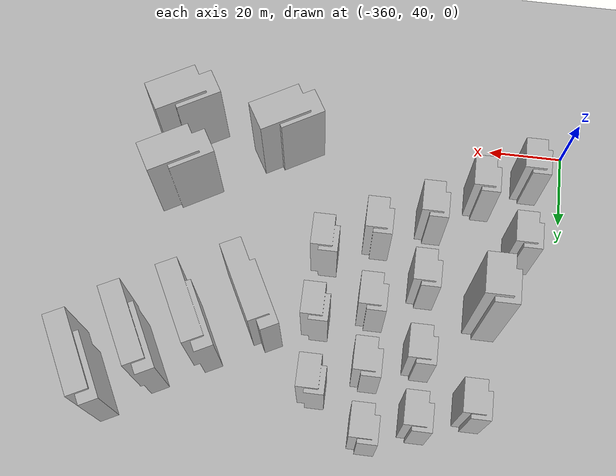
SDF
<sdf version="1.7">
 <world name="default">
  <model name="ground_plane">
   <static>1</static>
   <link name="link">
    <collision name="collision">
     <geometry><mesh><uri>model://ground_plane/scripts/plane.dae</uri><normal>0 0 1</normal></mesh></geometry>
     <surface><friction><ode><mu>100</mu><mu2>50</mu2></ode></friction></surface>
    </collision>
    <visual name="visual">
     <geometry><mesh><uri>model://ground_plane/scripts/plane.dae</uri><normal>0 0 1</normal></mesh></geometry>
     <material>
      <lighting>1</lighting>
      <script><uri>model://ground_plane/scripts/plane.jpg</uri><name>__default__</name></script>
      <shader type="pixel"/>
     </material>
    </visual>
   </link>
  </model>
  <model name="apartment2_1_clone_0">
   <static>1</static>
   <link name="link_0">
    <inertial>
     <mass>1</mass>
     <inertia>
      <ixx>0.166667</ixx>
      <ixy>0</ixy>
      <ixz>0</ixz>
      <iyy>0.166667</iyy>
      <iyz>0</iyz>
      <izz>0.166667</izz>
     </inertia>
    </inertial>
    <pose>1e-06 -0 0 0 -0 0</pose>
    <visual name="visual">
     <geometry>
      <mesh><uri>model://apartment1/scripts/apartment1.dae</uri><scale>0.35 0.14 0.22</scale></mesh>
     </geometry>
     <material>
      <lighting>1</lighting>
      <script><uri>model://apartment1/scripts/apartment1.jpg</uri><name>__default__</name></script>
      <shader type="pixel"/>
     </material>
    </visual>
    <collision name="collision">
     <geometry>
      <mesh><uri>model://apartment1/scripts/apartment1.dae</uri><scale>0.35 0.14 0.22</scale></mesh>
     </geometry>
     <surface>
      <friction>
       <ode><mu>1</mu><mu2>1</mu2><fdir1>0 0 0</fdir1><slip1>0</slip1><slip2>0</slip2></ode>
       <torsional>
        <coefficient>1</coefficient>
        <patch_radius>0</patch_radius>
        <surface_radius>0</surface_radius>
        <use_patch_radius>1</use_patch_radius>
        <ode><slip>0</slip></ode>
       </torsional>
      </friction>
      <bounce><restitution_coefficient>0</restitution_coefficient><threshold>1e+06</threshold></bounce>
      <contact>
       <collide_without_contact>0</collide_without_contact>
       <collide_without_contact_bitmask>1</collide_without_contact_bitmask>
       <collide_bitmask>1</collide_bitmask>
       <ode>
        <soft_cfm>0</soft_cfm>
        <soft_erp>0.2</soft_erp>
        <kp>1e+13</kp>
        <kd>1</kd>
        <max_vel>0.01</max_vel>
        <min_depth>0</min_depth>
       </ode>
       <bullet>
        <split_impulse>1</split_impulse>
        <split_impulse_penetration_threshold>-0.01</split_impulse_penetration_threshold>
        <soft_cfm>0</soft_cfm>
        <soft_erp>0.2</soft_erp>
        <kp>1e+13</kp>
        <kd>1</kd>
       </bullet>
      </contact>
     </surface>
    </collision>
   </link>
   <static>0</static>
   <pose>-281.654 47.0223 0 0 -0 0.527898</pose>
  </model>
  <model name="apartment2_1_clone_2">
   <static>1</static>
   <link name="link_0">
    <inertial>
     <mass>1</mass>
     <inertia>
      <ixx>0.166667</ixx>
      <ixy>0</ixy>
      <ixz>0</ixz>
      <iyy>0.166667</iyy>
      <iyz>0</iyz>
      <izz>0.166667</izz>
     </inertia>
    </inertial>
    <pose>1e-06 -0 0 0 -0 0</pose>
    <visual name="visual">
     <geometry>
      <mesh><uri>model://apartment1/scripts/apartment1.dae</uri><scale>0.35 0.14 0.22</scale></mesh>
     </geometry>
     <material>
      <lighting>1</lighting>
      <script><uri>model://apartment1/scripts/apartment1.jpg</uri><name>__default__</name></script>
      <shader type="pixel"/>
     </material>
    </visual>
    <collision name="collision">
     <geometry>
      <mesh><uri>model://apartment1/scripts/apartment1.dae</uri><scale>0.35 0.14 0.22</scale></mesh>
     </geometry>
     <surface>
      <friction>
       <ode><mu>1</mu><mu2>1</mu2><fdir1>0 0 0</fdir1><slip1>0</slip1><slip2>0</slip2></ode>
       <torsional>
        <coefficient>1</coefficient>
        <patch_radius>0</patch_radius>
        <surface_radius>0</surface_radius>
        <use_patch_radius>1</use_patch_radius>
        <ode><slip>0</slip></ode>
       </torsional>
      </friction>
      <bounce><restitution_coefficient>0</restitution_coefficient><threshold>1e+06</threshold></bounce>
      <contact>
       <collide_without_contact>0</collide_without_contact>
       <collide_without_contact_bitmask>1</collide_without_contact_bitmask>
       <collide_bitmask>1</collide_bitmask>
       <ode>
        <soft_cfm>0</soft_cfm>
        <soft_erp>0.2</soft_erp>
        <kp>1e+13</kp>
        <kd>1</kd>
        <max_vel>0.01</max_vel>
        <min_depth>0</min_depth>
       </ode>
       <bullet>
        <split_impulse>1</split_impulse>
        <split_impulse_penetration_threshold>-0.01</split_impulse_penetration_threshold>
        <soft_cfm>0</soft_cfm>
        <soft_erp>0.2</soft_erp>
        <kp>1e+13</kp>
        <kd>1</kd>
       </bullet>
      </contact>
     </surface>
    </collision>
   </link>
   <static>0</static>
   <pose>-253.968 44.6072 0 0 -0 0.527898</pose>
  </model>
  <model name="apartment2_1_clone_3">
   <static>1</static>
   <link name="link_0">
    <inertial>
     <mass>1</mass>
     <inertia>
      <ixx>0.166667</ixx>
      <ixy>0</ixy>
      <ixz>0</ixz>
      <iyy>0.166667</iyy>
      <iyz>0</iyz>
      <izz>0.166667</izz>
     </inertia>
    </inertial>
    <pose>1e-06 -0 0 0 -0 0</pose>
    <visual name="visual">
     <geometry>
      <mesh><uri>model://apartment1/scripts/apartment1.dae</uri><scale>0.35 0.14 0.22</scale></mesh>
     </geometry>
     <material>
      <lighting>1</lighting>
      <script><uri>model://apartment1/scripts/apartment1.jpg</uri><name>__default__</name></script>
      <shader type="pixel"/>
     </material>
    </visual>
    <collision name="collision">
     <geometry>
      <mesh><uri>model://apartment1/scripts/apartment1.dae</uri><scale>0.35 0.14 0.22</scale></mesh>
     </geometry>
     <surface>
      <friction>
       <ode><mu>1</mu><mu2>1</mu2><fdir1>0 0 0</fdir1><slip1>0</slip1><slip2>0</slip2></ode>
       <torsional>
        <coefficient>1</coefficient>
        <patch_radius>0</patch_radius>
        <surface_radius>0</surface_radius>
        <use_patch_radius>1</use_patch_radius>
        <ode><slip>0</slip></ode>
       </torsional>
      </friction>
      <bounce><restitution_coefficient>0</restitution_coefficient><threshold>1e+06</threshold></bounce>
      <contact>
       <collide_without_contact>0</collide_without_contact>
       <collide_without_contact_bitmask>1</collide_without_contact_bitmask>
       <collide_bitmask>1</collide_bitmask>
       <ode>
        <soft_cfm>0</soft_cfm>
        <soft_erp>0.2</soft_erp>
        <kp>1e+13</kp>
        <kd>1</kd>
        <max_vel>0.01</max_vel>
        <min_depth>0</min_depth>
       </ode>
       <bullet>
        <split_impulse>1</split_impulse>
        <split_impulse_penetration_threshold>-0.01</split_impulse_penetration_threshold>
        <soft_cfm>0</soft_cfm>
        <soft_erp>0.2</soft_erp>
        <kp>1e+13</kp>
        <kd>1</kd>
       </bullet>
      </contact>
     </surface>
    </collision>
   </link>
   <static>0</static>
   <pose>-255.029 61.8446 0 0 -0 0.527898</pose>
  </model>
  <model name="apartment1_0_clone_32">
   <static>1</static>
   <link name="link_0">
    <inertial>
     <mass>1</mass>
     <inertia>
      <ixx>0.166667</ixx>
      <ixy>0</ixy>
      <ixz>0</ixz>
      <iyy>0.166667</iyy>
      <iyz>0</iyz>
      <izz>0.166667</izz>
     </inertia>
    </inertial>
    <pose>1e-06 -0 0 0 -0 0</pose>
    <visual name="visual">
     <geometry>
      <mesh><uri>model://apartment1/scripts/apartment1.dae</uri><scale>0.14 0.14 0.175</scale></mesh>
     </geometry>
     <material>
      <lighting>1</lighting>
      <script><uri>model://apartment1/scripts/apartment1.jpg</uri><name>__default__</name></script>
      <shader type="pixel"/>
     </material>
    </visual>
    <collision name="collision">
     <geometry>
      <mesh><uri>model://apartment1/scripts/apartment1.dae</uri><scale>0.14 0.14 0.175</scale></mesh>
     </geometry>
     <surface>
      <friction>
       <ode><mu>1</mu><mu2>1</mu2><fdir1>0 0 0</fdir1><slip1>0</slip1><slip2>0</slip2></ode>
       <torsional>
        <coefficient>1</coefficient>
        <patch_radius>0</patch_radius>
        <surface_radius>0</surface_radius>
        <use_patch_radius>1</use_patch_radius>
        <ode><slip>0</slip></ode>
       </torsional>
      </friction>
      <bounce><restitution_coefficient>0</restitution_coefficient><threshold>1e+06</threshold></bounce>
      <contact>
       <collide_without_contact>0</collide_without_contact>
       <collide_without_contact_bitmask>1</collide_without_contact_bitmask>
       <collide_bitmask>1</collide_bitmask>
       <ode>
        <soft_cfm>0</soft_cfm>
        <soft_erp>0.2</soft_erp>
        <kp>1e+13</kp>
        <kd>1</kd>
        <max_vel>0.01</max_vel>
        <min_depth>0</min_depth>
       </ode>
       <bullet>
        <split_impulse>1</split_impulse>
        <split_impulse_penetration_threshold>-0.01</split_impulse_penetration_threshold>
        <soft_cfm>0</soft_cfm>
        <soft_erp>0.2</soft_erp>
        <kp>1e+13</kp>
        <kd>1</kd>
       </bullet>
      </contact>
     </surface>
    </collision>
   </link>
   <static>0</static>
   <pose>-296.546 77.1253 0 0 -0 0</pose>
  </model>
  <model name="apartment1_0_clone_33">
   <static>1</static>
   <link name="link_0">
    <inertial>
     <mass>1</mass>
     <inertia>
      <ixx>0.166667</ixx>
      <ixy>0</ixy>
      <ixz>0</ixz>
      <iyy>0.166667</iyy>
      <iyz>0</iyz>
      <izz>0.166667</izz>
     </inertia>
    </inertial>
    <pose>1e-06 -0 0 0 -0 0</pose>
    <visual name="visual">
     <geometry>
      <mesh><uri>model://apartment1/scripts/apartment1.dae</uri><scale>0.14 0.14 0.175</scale></mesh>
     </geometry>
     <material>
      <lighting>1</lighting>
      <script><uri>model://apartment1/scripts/apartment1.jpg</uri><name>__default__</name></script>
      <shader type="pixel"/>
     </material>
    </visual>
    <collision name="collision">
     <geometry>
      <mesh><uri>model://apartment1/scripts/apartment1.dae</uri><scale>0.14 0.14 0.175</scale></mesh>
     </geometry>
     <surface>
      <friction>
       <ode><mu>1</mu><mu2>1</mu2><fdir1>0 0 0</fdir1><slip1>0</slip1><slip2>0</slip2></ode>
       <torsional>
        <coefficient>1</coefficient>
        <patch_radius>0</patch_radius>
        <surface_radius>0</surface_radius>
        <use_patch_radius>1</use_patch_radius>
        <ode><slip>0</slip></ode>
       </torsional>
      </friction>
      <bounce><restitution_coefficient>0</restitution_coefficient><threshold>1e+06</threshold></bounce>
      <contact>
       <collide_without_contact>0</collide_without_contact>
       <collide_without_contact_bitmask>1</collide_without_contact_bitmask>
       <collide_bitmask>1</collide_bitmask>
       <ode>
        <soft_cfm>0</soft_cfm>
        <soft_erp>0.2</soft_erp>
        <kp>1e+13</kp>
        <kd>1</kd>
        <max_vel>0.01</max_vel>
        <min_depth>0</min_depth>
       </ode>
       <bullet>
        <split_impulse>1</split_impulse>
        <split_impulse_penetration_threshold>-0.01</split_impulse_penetration_threshold>
        <soft_cfm>0</soft_cfm>
        <soft_erp>0.2</soft_erp>
        <kp>1e+13</kp>
        <kd>1</kd>
       </bullet>
      </contact>
     </surface>
    </collision>
   </link>
   <static>0</static>
   <pose>-309.75 70.7885 0 0 -0 0</pose>
  </model>
  <model name="apartment1_0_clone_42">
   <static>1</static>
   <link name="link_0">
    <inertial>
     <mass>1</mass>
     <inertia>
      <ixx>0.166667</ixx>
      <ixy>0</ixy>
      <ixz>0</ixz>
      <iyy>0.166667</iyy>
      <iyz>0</iyz>
      <izz>0.166667</izz>
     </inertia>
    </inertial>
    <pose>1e-06 -0 0 0 -0 0</pose>
    <visual name="visual">
     <geometry>
      <mesh><uri>model://apartment1/scripts/apartment1.dae</uri><scale>0.14 0.14 0.175</scale></mesh>
     </geometry>
     <material>
      <lighting>1</lighting>
      <script><uri>model://apartment1/scripts/apartment1.jpg</uri><name>__default__</name></script>
      <shader type="pixel"/>
     </material>
    </visual>
    <collision name="collision">
     <geometry>
      <mesh><uri>model://apartment1/scripts/apartment1.dae</uri><scale>0.14 0.14 0.175</scale></mesh>
     </geometry>
     <surface>
      <friction>
       <ode><mu>1</mu><mu2>1</mu2><fdir1>0 0 0</fdir1><slip1>0</slip1><slip2>0</slip2></ode>
       <torsional>
        <coefficient>1</coefficient>
        <patch_radius>0</patch_radius>
        <surface_radius>0</surface_radius>
        <use_patch_radius>1</use_patch_radius>
        <ode><slip>0</slip></ode>
       </torsional>
      </friction>
      <bounce><restitution_coefficient>0</restitution_coefficient><threshold>1e+06</threshold></bounce>
      <contact>
       <collide_without_contact>0</collide_without_contact>
       <collide_without_contact_bitmask>1</collide_without_contact_bitmask>
       <collide_bitmask>1</collide_bitmask>
       <ode>
        <soft_cfm>0</soft_cfm>
        <soft_erp>0.2</soft_erp>
        <kp>1e+13</kp>
        <kd>1</kd>
        <max_vel>0.01</max_vel>
        <min_depth>0</min_depth>
       </ode>
       <bullet>
        <split_impulse>1</split_impulse>
        <split_impulse_penetration_threshold>-0.01</split_impulse_penetration_threshold>
        <soft_cfm>0</soft_cfm>
        <soft_erp>0.2</soft_erp>
        <kp>1e+13</kp>
        <kd>1</kd>
       </bullet>
      </contact>
     </surface>
    </collision>
   </link>
   <static>0</static>
   <pose>-323.56 64.6225 0 0 -0 0</pose>
  </model>
  <model name="apartment1_0_clone_43">
   <static>1</static>
   <link name="link_0">
    <inertial>
     <mass>1</mass>
     <inertia>
      <ixx>0.166667</ixx>
      <ixy>0</ixy>
      <ixz>0</ixz>
      <iyy>0.166667</iyy>
      <iyz>0</iyz>
      <izz>0.166667</izz>
     </inertia>
    </inertial>
    <pose>1e-06 -0 0 0 -0 0</pose>
    <visual name="visual">
     <geometry>
      <mesh><uri>model://apartment1/scripts/apartment1.dae</uri><scale>0.14 0.14 0.175</scale></mesh>
     </geometry>
     <material>
      <lighting>1</lighting>
      <script><uri>model://apartment1/scripts/apartment1.jpg</uri><name>__default__</name></script>
      <shader type="pixel"/>
     </material>
    </visual>
    <collision name="collision">
     <geometry>
      <mesh><uri>model://apartment1/scripts/apartment1.dae</uri><scale>0.14 0.14 0.175</scale></mesh>
     </geometry>
     <surface>
      <friction>
       <ode><mu>1</mu><mu2>1</mu2><fdir1>0 0 0</fdir1><slip1>0</slip1><slip2>0</slip2></ode>
       <torsional>
        <coefficient>1</coefficient>
        <patch_radius>0</patch_radius>
        <surface_radius>0</surface_radius>
        <use_patch_radius>1</use_patch_radius>
        <ode><slip>0</slip></ode>
       </torsional>
      </friction>
      <bounce><restitution_coefficient>0</restitution_coefficient><threshold>1e+06</threshold></bounce>
      <contact>
       <collide_without_contact>0</collide_without_contact>
       <collide_without_contact_bitmask>1</collide_without_contact_bitmask>
       <collide_bitmask>1</collide_bitmask>
       <ode>
        <soft_cfm>0</soft_cfm>
        <soft_erp>0.2</soft_erp>
        <kp>1e+13</kp>
        <kd>1</kd>
        <max_vel>0.01</max_vel>
        <min_depth>0</min_depth>
       </ode>
       <bullet>
        <split_impulse>1</split_impulse>
        <split_impulse_penetration_threshold>-0.01</split_impulse_penetration_threshold>
        <soft_cfm>0</soft_cfm>
        <soft_erp>0.2</soft_erp>
        <kp>1e+13</kp>
        <kd>1</kd>
       </bullet>
      </contact>
     </surface>
    </collision>
   </link>
   <static>0</static>
   <pose>-336.226 56.0159 0 0 -0 0</pose>
  </model>
  <model name="apartment1_0_clone_44">
   <static>1</static>
   <link name="link_0">
    <inertial>
     <mass>1</mass>
     <inertia>
      <ixx>0.166667</ixx>
      <ixy>0</ixy>
      <ixz>0</ixz>
      <iyy>0.166667</iyy>
      <iyz>0</iyz>
      <izz>0.166667</izz>
     </inertia>
    </inertial>
    <pose>1e-06 -0 0 0 -0 0</pose>
    <visual name="visual">
     <geometry>
      <mesh><uri>model://apartment1/scripts/apartment1.dae</uri><scale>0.14 0.14 0.175</scale></mesh>
     </geometry>
     <material>
      <lighting>1</lighting>
      <script><uri>model://apartment1/scripts/apartment1.jpg</uri><name>__default__</name></script>
      <shader type="pixel"/>
     </material>
    </visual>
    <collision name="collision">
     <geometry>
      <mesh><uri>model://apartment1/scripts/apartment1.dae</uri><scale>0.14 0.14 0.175</scale></mesh>
     </geometry>
     <surface>
      <friction>
       <ode><mu>1</mu><mu2>1</mu2><fdir1>0 0 0</fdir1><slip1>0</slip1><slip2>0</slip2></ode>
       <torsional>
        <coefficient>1</coefficient>
        <patch_radius>0</patch_radius>
        <surface_radius>0</surface_radius>
        <use_patch_radius>1</use_patch_radius>
        <ode><slip>0</slip></ode>
       </torsional>
      </friction>
      <bounce><restitution_coefficient>0</restitution_coefficient><threshold>1e+06</threshold></bounce>
      <contact>
       <collide_without_contact>0</collide_without_contact>
       <collide_without_contact_bitmask>1</collide_without_contact_bitmask>
       <collide_bitmask>1</collide_bitmask>
       <ode>
        <soft_cfm>0</soft_cfm>
        <soft_erp>0.2</soft_erp>
        <kp>1e+13</kp>
        <kd>1</kd>
        <max_vel>0.01</max_vel>
        <min_depth>0</min_depth>
       </ode>
       <bullet>
        <split_impulse>1</split_impulse>
        <split_impulse_penetration_threshold>-0.01</split_impulse_penetration_threshold>
        <soft_cfm>0</soft_cfm>
        <soft_erp>0.2</soft_erp>
        <kp>1e+13</kp>
        <kd>1</kd>
       </bullet>
      </contact>
     </surface>
    </collision>
   </link>
   <static>0</static>
   <pose>-349.048 49.5192 0 0 -0 0</pose>
  </model>
  <model name="apartment1_0_clone_1_clone_3">
   <static>1</static>
   <link name="link_0">
    <inertial>
     <mass>1</mass>
     <inertia>
      <ixx>0.166667</ixx>
      <ixy>0</ixy>
      <ixz>0</ixz>
      <iyy>0.166667</iyy>
      <iyz>0</iyz>
      <izz>0.166667</izz>
     </inertia>
    </inertial>
    <pose>1e-06 -0 0 0 -0 0</pose>
    <visual name="visual">
     <geometry>
      <mesh><uri>model://apartment1/scripts/apartment1.dae</uri><scale>0.14 0.14 0.175</scale></mesh>
     </geometry>
     <material>
      <lighting>1</lighting>
      <script><uri>model://apartment1/scripts/apartment1.jpg</uri><name>__default__</name></script>
      <shader type="pixel"/>
     </material>
    </visual>
    <collision name="collision">
     <geometry>
      <mesh><uri>model://apartment1/scripts/apartment1.dae</uri><scale>0.14 0.14 0.175</scale></mesh>
     </geometry>
     <surface>
      <friction>
       <ode><mu>1</mu><mu2>1</mu2><fdir1>0 0 0</fdir1><slip1>0</slip1><slip2>0</slip2></ode>
       <torsional>
        <coefficient>1</coefficient>
        <patch_radius>0</patch_radius>
        <surface_radius>0</surface_radius>
        <use_patch_radius>1</use_patch_radius>
        <ode><slip>0</slip></ode>
       </torsional>
      </friction>
      <bounce><restitution_coefficient>0</restitution_coefficient><threshold>1e+06</threshold></bounce>
      <contact>
       <collide_without_contact>0</collide_without_contact>
       <collide_without_contact_bitmask>1</collide_without_contact_bitmask>
       <collide_bitmask>1</collide_bitmask>
       <ode>
        <soft_cfm>0</soft_cfm>
        <soft_erp>0.2</soft_erp>
        <kp>1e+13</kp>
        <kd>1</kd>
        <max_vel>0.01</max_vel>
        <min_depth>0</min_depth>
       </ode>
       <bullet>
        <split_impulse>1</split_impulse>
        <split_impulse_penetration_threshold>-0.01</split_impulse_penetration_threshold>
        <soft_cfm>0</soft_cfm>
        <soft_erp>0.2</soft_erp>
        <kp>1e+13</kp>
        <kd>1</kd>
       </bullet>
      </contact>
     </surface>
    </collision>
   </link>
   <static>0</static>
   <pose>-347.544 70.2306 0 0 -0 0</pose>
  </model>
  <model name="apartment1_0_clone_1_clone_5">
   <static>1</static>
   <link name="link_0">
    <inertial>
     <mass>1</mass>
     <inertia>
      <ixx>0.166667</ixx>
      <ixy>0</ixy>
      <ixz>0</ixz>
      <iyy>0.166667</iyy>
      <iyz>0</iyz>
      <izz>0.166667</izz>
     </inertia>
    </inertial>
    <pose>1e-06 -0 0 0 -0 0</pose>
    <visual name="visual">
     <geometry>
      <mesh><uri>model://apartment1/scripts/apartment1.dae</uri><scale>0.14 0.14 0.175</scale></mesh>
     </geometry>
     <material>
      <lighting>1</lighting>
      <script><uri>model://apartment1/scripts/apartment1.jpg</uri><name>__default__</name></script>
      <shader type="pixel"/>
     </material>
    </visual>
    <collision name="collision">
     <geometry>
      <mesh><uri>model://apartment1/scripts/apartment1.dae</uri><scale>0.14 0.14 0.175</scale></mesh>
     </geometry>
     <surface>
      <friction>
       <ode><mu>1</mu><mu2>1</mu2><fdir1>0 0 0</fdir1><slip1>0</slip1><slip2>0</slip2></ode>
       <torsional>
        <coefficient>1</coefficient>
        <patch_radius>0</patch_radius>
        <surface_radius>0</surface_radius>
        <use_patch_radius>1</use_patch_radius>
        <ode><slip>0</slip></ode>
       </torsional>
      </friction>
      <bounce><restitution_coefficient>0</restitution_coefficient><threshold>1e+06</threshold></bounce>
      <contact>
       <collide_without_contact>0</collide_without_contact>
       <collide_without_contact_bitmask>1</collide_without_contact_bitmask>
       <collide_bitmask>1</collide_bitmask>
       <ode>
        <soft_cfm>0</soft_cfm>
        <soft_erp>0.2</soft_erp>
        <kp>1e+13</kp>
        <kd>1</kd>
        <max_vel>0.01</max_vel>
        <min_depth>0</min_depth>
       </ode>
       <bullet>
        <split_impulse>1</split_impulse>
        <split_impulse_penetration_threshold>-0.01</split_impulse_penetration_threshold>
        <soft_cfm>0</soft_cfm>
        <soft_erp>0.2</soft_erp>
        <kp>1e+13</kp>
        <kd>1</kd>
       </bullet>
      </contact>
     </surface>
    </collision>
   </link>
   <static>0</static>
   <pose>-322.923 83.28 0 0 -0 0</pose>
  </model>
  <model name="apartment1_0_clone_1_clone_6">
   <static>1</static>
   <link name="link_0">
    <inertial>
     <mass>1</mass>
     <inertia>
      <ixx>0.166667</ixx>
      <ixy>0</ixy>
      <ixz>0</ixz>
      <iyy>0.166667</iyy>
      <iyz>0</iyz>
      <izz>0.166667</izz>
     </inertia>
    </inertial>
    <pose>1e-06 -0 0 0 -0 0</pose>
    <visual name="visual">
     <geometry>
      <mesh><uri>model://apartment1/scripts/apartment1.dae</uri><scale>0.14 0.14 0.175</scale></mesh>
     </geometry>
     <material>
      <lighting>1</lighting>
      <script><uri>model://apartment1/scripts/apartment1.jpg</uri><name>__default__</name></script>
      <shader type="pixel"/>
     </material>
    </visual>
    <collision name="collision">
     <geometry>
      <mesh><uri>model://apartment1/scripts/apartment1.dae</uri><scale>0.14 0.14 0.175</scale></mesh>
     </geometry>
     <surface>
      <friction>
       <ode><mu>1</mu><mu2>1</mu2><fdir1>0 0 0</fdir1><slip1>0</slip1><slip2>0</slip2></ode>
       <torsional>
        <coefficient>1</coefficient>
        <patch_radius>0</patch_radius>
        <surface_radius>0</surface_radius>
        <use_patch_radius>1</use_patch_radius>
        <ode><slip>0</slip></ode>
       </torsional>
      </friction>
      <bounce><restitution_coefficient>0</restitution_coefficient><threshold>1e+06</threshold></bounce>
      <contact>
       <collide_without_contact>0</collide_without_contact>
       <collide_without_contact_bitmask>1</collide_without_contact_bitmask>
       <collide_bitmask>1</collide_bitmask>
       <ode>
        <soft_cfm>0</soft_cfm>
        <soft_erp>0.2</soft_erp>
        <kp>1e+13</kp>
        <kd>1</kd>
        <max_vel>0.01</max_vel>
        <min_depth>0</min_depth>
       </ode>
       <bullet>
        <split_impulse>1</split_impulse>
        <split_impulse_penetration_threshold>-0.01</split_impulse_penetration_threshold>
        <soft_cfm>0</soft_cfm>
        <soft_erp>0.2</soft_erp>
        <kp>1e+13</kp>
        <kd>1</kd>
       </bullet>
      </contact>
     </surface>
    </collision>
   </link>
   <static>0</static>
   <pose>-310.177 91.0266 0 0 -0 0</pose>
  </model>
  <model name="apartment1_0_clone_1_clone_7">
   <static>1</static>
   <link name="link_0">
    <inertial>
     <mass>1</mass>
     <inertia>
      <ixx>0.166667</ixx>
      <ixy>0</ixy>
      <ixz>0</ixz>
      <iyy>0.166667</iyy>
      <iyz>0</iyz>
      <izz>0.166667</izz>
     </inertia>
    </inertial>
    <pose>1e-06 -0 0 0 -0 0</pose>
    <visual name="visual">
     <geometry>
      <mesh><uri>model://apartment1/scripts/apartment1.dae</uri><scale>0.14 0.14 0.175</scale></mesh>
     </geometry>
     <material>
      <lighting>1</lighting>
      <script><uri>model://apartment1/scripts/apartment1.jpg</uri><name>__default__</name></script>
      <shader type="pixel"/>
     </material>
    </visual>
    <collision name="collision">
     <geometry>
      <mesh><uri>model://apartment1/scripts/apartment1.dae</uri><scale>0.14 0.14 0.175</scale></mesh>
     </geometry>
     <surface>
      <friction>
       <ode><mu>1</mu><mu2>1</mu2><fdir1>0 0 0</fdir1><slip1>0</slip1><slip2>0</slip2></ode>
       <torsional>
        <coefficient>1</coefficient>
        <patch_radius>0</patch_radius>
        <surface_radius>0</surface_radius>
        <use_patch_radius>1</use_patch_radius>
        <ode><slip>0</slip></ode>
       </torsional>
      </friction>
      <bounce><restitution_coefficient>0</restitution_coefficient><threshold>1e+06</threshold></bounce>
      <contact>
       <collide_without_contact>0</collide_without_contact>
       <collide_without_contact_bitmask>1</collide_without_contact_bitmask>
       <collide_bitmask>1</collide_bitmask>
       <ode>
        <soft_cfm>0</soft_cfm>
        <soft_erp>0.2</soft_erp>
        <kp>1e+13</kp>
        <kd>1</kd>
        <max_vel>0.01</max_vel>
        <min_depth>0</min_depth>
       </ode>
       <bullet>
        <split_impulse>1</split_impulse>
        <split_impulse_penetration_threshold>-0.01</split_impulse_penetration_threshold>
        <soft_cfm>0</soft_cfm>
        <soft_erp>0.2</soft_erp>
        <kp>1e+13</kp>
        <kd>1</kd>
       </bullet>
      </contact>
     </surface>
    </collision>
   </link>
   <static>0</static>
   <pose>-296.27 95.2522 0 0 -0 0</pose>
  </model>
  <model name="apartment1_0_clone_1_clone_14">
   <static>1</static>
   <link name="link_0">
    <inertial>
     <mass>1</mass>
     <inertia>
      <ixx>0.166667</ixx>
      <ixy>0</ixy>
      <ixz>0</ixz>
      <iyy>0.166667</iyy>
      <iyz>0</iyz>
      <izz>0.166667</izz>
     </inertia>
    </inertial>
    <pose>1e-06 -0 0 0 -0 0</pose>
    <visual name="visual">
     <geometry>
      <mesh><uri>model://apartment1/scripts/apartment1.dae</uri><scale>0.14 0.14 0.175</scale></mesh>
     </geometry>
     <material>
      <lighting>1</lighting>
      <script><uri>model://apartment1/scripts/apartment1.jpg</uri><name>__default__</name></script>
      <shader type="pixel"/>
     </material>
    </visual>
    <collision name="collision">
     <geometry>
      <mesh><uri>model://apartment1/scripts/apartment1.dae</uri><scale>0.14 0.14 0.175</scale></mesh>
     </geometry>
     <surface>
      <friction>
       <ode><mu>1</mu><mu2>1</mu2><fdir1>0 0 0</fdir1><slip1>0</slip1><slip2>0</slip2></ode>
       <torsional>
        <coefficient>1</coefficient>
        <patch_radius>0</patch_radius>
        <surface_radius>0</surface_radius>
        <use_patch_radius>1</use_patch_radius>
        <ode><slip>0</slip></ode>
       </torsional>
      </friction>
      <bounce><restitution_coefficient>0</restitution_coefficient><threshold>1e+06</threshold></bounce>
      <contact>
       <collide_without_contact>0</collide_without_contact>
       <collide_without_contact_bitmask>1</collide_without_contact_bitmask>
       <collide_bitmask>1</collide_bitmask>
       <ode>
        <soft_cfm>0</soft_cfm>
        <soft_erp>0.2</soft_erp>
        <kp>1e+13</kp>
        <kd>1</kd>
        <max_vel>0.01</max_vel>
        <min_depth>0</min_depth>
       </ode>
       <bullet>
        <split_impulse>1</split_impulse>
        <split_impulse_penetration_threshold>-0.01</split_impulse_penetration_threshold>
        <soft_cfm>0</soft_cfm>
        <soft_erp>0.2</soft_erp>
        <kp>1e+13</kp>
        <kd>1</kd>
       </bullet>
      </contact>
     </surface>
    </collision>
   </link>
   <static>0</static>
   <pose>-323.297 102.879 0 0 -0 0</pose>
  </model>
  <model name="apartment1_0_clone_1_clone_15">
   <static>1</static>
   <link name="link_0">
    <inertial>
     <mass>1</mass>
     <inertia>
      <ixx>0.166667</ixx>
      <ixy>0</ixy>
      <ixz>0</ixz>
      <iyy>0.166667</iyy>
      <iyz>0</iyz>
      <izz>0.166667</izz>
     </inertia>
    </inertial>
    <pose>1e-06 -0 0 0 -0 0</pose>
    <visual name="visual">
     <geometry>
      <mesh><uri>model://apartment1/scripts/apartment1.dae</uri><scale>0.14 0.14 0.175</scale></mesh>
     </geometry>
     <material>
      <lighting>1</lighting>
      <script><uri>model://apartment1/scripts/apartment1.jpg</uri><name>__default__</name></script>
      <shader type="pixel"/>
     </material>
    </visual>
    <collision name="collision">
     <geometry>
      <mesh><uri>model://apartment1/scripts/apartment1.dae</uri><scale>0.14 0.14 0.175</scale></mesh>
     </geometry>
     <surface>
      <friction>
       <ode><mu>1</mu><mu2>1</mu2><fdir1>0 0 0</fdir1><slip1>0</slip1><slip2>0</slip2></ode>
       <torsional>
        <coefficient>1</coefficient>
        <patch_radius>0</patch_radius>
        <surface_radius>0</surface_radius>
        <use_patch_radius>1</use_patch_radius>
        <ode><slip>0</slip></ode>
       </torsional>
      </friction>
      <bounce><restitution_coefficient>0</restitution_coefficient><threshold>1e+06</threshold></bounce>
      <contact>
       <collide_without_contact>0</collide_without_contact>
       <collide_without_contact_bitmask>1</collide_without_contact_bitmask>
       <collide_bitmask>1</collide_bitmask>
       <ode>
        <soft_cfm>0</soft_cfm>
        <soft_erp>0.2</soft_erp>
        <kp>1e+13</kp>
        <kd>1</kd>
        <max_vel>0.01</max_vel>
        <min_depth>0</min_depth>
       </ode>
       <bullet>
        <split_impulse>1</split_impulse>
        <split_impulse_penetration_threshold>-0.01</split_impulse_penetration_threshold>
        <soft_cfm>0</soft_cfm>
        <soft_erp>0.2</soft_erp>
        <kp>1e+13</kp>
        <kd>1</kd>
       </bullet>
      </contact>
     </surface>
    </collision>
   </link>
   <static>0</static>
   <pose>-310.437 107.433 0 0 -0 0</pose>
  </model>
  <model name="apartment1_0_clone_1_clone_16">
   <static>1</static>
   <link name="link_0">
    <inertial>
     <mass>1</mass>
     <inertia>
      <ixx>0.166667</ixx>
      <ixy>0</ixy>
      <ixz>0</ixz>
      <iyy>0.166667</iyy>
      <iyz>0</iyz>
      <izz>0.166667</izz>
     </inertia>
    </inertial>
    <pose>1e-06 -0 0 0 -0 0</pose>
    <visual name="visual">
     <geometry>
      <mesh><uri>model://apartment1/scripts/apartment1.dae</uri><scale>0.14 0.14 0.175</scale></mesh>
     </geometry>
     <material>
      <lighting>1</lighting>
      <script><uri>model://apartment1/scripts/apartment1.jpg</uri><name>__default__</name></script>
      <shader type="pixel"/>
     </material>
    </visual>
    <collision name="collision">
     <geometry>
      <mesh><uri>model://apartment1/scripts/apartment1.dae</uri><scale>0.14 0.14 0.175</scale></mesh>
     </geometry>
     <surface>
      <friction>
       <ode><mu>1</mu><mu2>1</mu2><fdir1>0 0 0</fdir1><slip1>0</slip1><slip2>0</slip2></ode>
       <torsional>
        <coefficient>1</coefficient>
        <patch_radius>0</patch_radius>
        <surface_radius>0</surface_radius>
        <use_patch_radius>1</use_patch_radius>
        <ode><slip>0</slip></ode>
       </torsional>
      </friction>
      <bounce><restitution_coefficient>0</restitution_coefficient><threshold>1e+06</threshold></bounce>
      <contact>
       <collide_without_contact>0</collide_without_contact>
       <collide_without_contact_bitmask>1</collide_without_contact_bitmask>
       <collide_bitmask>1</collide_bitmask>
       <ode>
        <soft_cfm>0</soft_cfm>
        <soft_erp>0.2</soft_erp>
        <kp>1e+13</kp>
        <kd>1</kd>
        <max_vel>0.01</max_vel>
        <min_depth>0</min_depth>
       </ode>
       <bullet>
        <split_impulse>1</split_impulse>
        <split_impulse_penetration_threshold>-0.01</split_impulse_penetration_threshold>
        <soft_cfm>0</soft_cfm>
        <soft_erp>0.2</soft_erp>
        <kp>1e+13</kp>
        <kd>1</kd>
       </bullet>
      </contact>
     </surface>
    </collision>
   </link>
   <static>0</static>
   <pose>-297.429 113.205 0 0 -0 0</pose>
  </model>
  <model name="apartment1_0_clone_1_clone_22">
   <static>1</static>
   <link name="link_0">
    <inertial>
     <mass>1</mass>
     <inertia>
      <ixx>0.166667</ixx>
      <ixy>0</ixy>
      <ixz>0</ixz>
      <iyy>0.166667</iyy>
      <iyz>0</iyz>
      <izz>0.166667</izz>
     </inertia>
    </inertial>
    <pose>1e-06 -0 0 0 -0 0</pose>
    <visual name="visual">
     <geometry>
      <mesh><uri>model://apartment1/scripts/apartment1.dae</uri><scale>0.14 0.14 0.175</scale></mesh>
     </geometry>
     <material>
      <lighting>1</lighting>
      <script><uri>model://apartment1/scripts/apartment1.jpg</uri><name>__default__</name></script>
      <shader type="pixel"/>
     </material>
    </visual>
    <collision name="collision">
     <geometry>
      <mesh><uri>model://apartment1/scripts/apartment1.dae</uri><scale>0.14 0.14 0.175</scale></mesh>
     </geometry>
     <surface>
      <friction>
       <ode><mu>1</mu><mu2>1</mu2><fdir1>0 0 0</fdir1><slip1>0</slip1><slip2>0</slip2></ode>
       <torsional>
        <coefficient>1</coefficient>
        <patch_radius>0</patch_radius>
        <surface_radius>0</surface_radius>
        <use_patch_radius>1</use_patch_radius>
        <ode><slip>0</slip></ode>
       </torsional>
      </friction>
      <bounce><restitution_coefficient>0</restitution_coefficient><threshold>1e+06</threshold></bounce>
      <contact>
       <collide_without_contact>0</collide_without_contact>
       <collide_without_contact_bitmask>1</collide_without_contact_bitmask>
       <collide_bitmask>1</collide_bitmask>
       <ode>
        <soft_cfm>0</soft_cfm>
        <soft_erp>0.2</soft_erp>
        <kp>1e+13</kp>
        <kd>1</kd>
        <max_vel>0.01</max_vel>
        <min_depth>0</min_depth>
       </ode>
       <bullet>
        <split_impulse>1</split_impulse>
        <split_impulse_penetration_threshold>-0.01</split_impulse_penetration_threshold>
        <soft_cfm>0</soft_cfm>
        <soft_erp>0.2</soft_erp>
        <kp>1e+13</kp>
        <kd>1</kd>
       </bullet>
      </contact>
     </surface>
    </collision>
   </link>
   <static>0</static>
   <pose>-337.143 114.533 0 0 -0 0</pose>
  </model>
  <model name="apartment1_0_clone_1_clone_23">
   <static>1</static>
   <link name="link_0">
    <inertial>
     <mass>1</mass>
     <inertia>
      <ixx>0.166667</ixx>
      <ixy>0</ixy>
      <ixz>0</ixz>
      <iyy>0.166667</iyy>
      <iyz>0</iyz>
      <izz>0.166667</izz>
     </inertia>
    </inertial>
    <pose>1e-06 -0 0 0 -0 0</pose>
    <visual name="visual">
     <geometry>
      <mesh><uri>model://apartment1/scripts/apartment1.dae</uri><scale>0.14 0.14 0.175</scale></mesh>
     </geometry>
     <material>
      <lighting>1</lighting>
      <script><uri>model://apartment1/scripts/apartment1.jpg</uri><name>__default__</name></script>
      <shader type="pixel"/>
     </material>
    </visual>
    <collision name="collision">
     <geometry>
      <mesh><uri>model://apartment1/scripts/apartment1.dae</uri><scale>0.14 0.14 0.175</scale></mesh>
     </geometry>
     <surface>
      <friction>
       <ode><mu>1</mu><mu2>1</mu2><fdir1>0 0 0</fdir1><slip1>0</slip1><slip2>0</slip2></ode>
       <torsional>
        <coefficient>1</coefficient>
        <patch_radius>0</patch_radius>
        <surface_radius>0</surface_radius>
        <use_patch_radius>1</use_patch_radius>
        <ode><slip>0</slip></ode>
       </torsional>
      </friction>
      <bounce><restitution_coefficient>0</restitution_coefficient><threshold>1e+06</threshold></bounce>
      <contact>
       <collide_without_contact>0</collide_without_contact>
       <collide_without_contact_bitmask>1</collide_without_contact_bitmask>
       <collide_bitmask>1</collide_bitmask>
       <ode>
        <soft_cfm>0</soft_cfm>
        <soft_erp>0.2</soft_erp>
        <kp>1e+13</kp>
        <kd>1</kd>
        <max_vel>0.01</max_vel>
        <min_depth>0</min_depth>
       </ode>
       <bullet>
        <split_impulse>1</split_impulse>
        <split_impulse_penetration_threshold>-0.01</split_impulse_penetration_threshold>
        <soft_cfm>0</soft_cfm>
        <soft_erp>0.2</soft_erp>
        <kp>1e+13</kp>
        <kd>1</kd>
       </bullet>
      </contact>
     </surface>
    </collision>
   </link>
   <static>0</static>
   <pose>-323.565 119.013 0 0 -0 0</pose>
  </model>
  <model name="apartment1_0_clone_1_clone_24">
   <static>1</static>
   <link name="link_0">
    <inertial>
     <mass>1</mass>
     <inertia>
      <ixx>0.166667</ixx>
      <ixy>0</ixy>
      <ixz>0</ixz>
      <iyy>0.166667</iyy>
      <iyz>0</iyz>
      <izz>0.166667</izz>
     </inertia>
    </inertial>
    <pose>1e-06 -0 0 0 -0 0</pose>
    <visual name="visual">
     <geometry>
      <mesh><uri>model://apartment1/scripts/apartment1.dae</uri><scale>0.14 0.14 0.175</scale></mesh>
     </geometry>
     <material>
      <lighting>1</lighting>
      <script><uri>model://apartment1/scripts/apartment1.jpg</uri><name>__default__</name></script>
      <shader type="pixel"/>
     </material>
    </visual>
    <collision name="collision">
     <geometry>
      <mesh><uri>model://apartment1/scripts/apartment1.dae</uri><scale>0.14 0.14 0.175</scale></mesh>
     </geometry>
     <surface>
      <friction>
       <ode><mu>1</mu><mu2>1</mu2><fdir1>0 0 0</fdir1><slip1>0</slip1><slip2>0</slip2></ode>
       <torsional>
        <coefficient>1</coefficient>
        <patch_radius>0</patch_radius>
        <surface_radius>0</surface_radius>
        <use_patch_radius>1</use_patch_radius>
        <ode><slip>0</slip></ode>
       </torsional>
      </friction>
      <bounce><restitution_coefficient>0</restitution_coefficient><threshold>1e+06</threshold></bounce>
      <contact>
       <collide_without_contact>0</collide_without_contact>
       <collide_without_contact_bitmask>1</collide_without_contact_bitmask>
       <collide_bitmask>1</collide_bitmask>
       <ode>
        <soft_cfm>0</soft_cfm>
        <soft_erp>0.2</soft_erp>
        <kp>1e+13</kp>
        <kd>1</kd>
        <max_vel>0.01</max_vel>
        <min_depth>0</min_depth>
       </ode>
       <bullet>
        <split_impulse>1</split_impulse>
        <split_impulse_penetration_threshold>-0.01</split_impulse_penetration_threshold>
        <soft_cfm>0</soft_cfm>
        <soft_erp>0.2</soft_erp>
        <kp>1e+13</kp>
        <kd>1</kd>
       </bullet>
      </contact>
     </surface>
    </collision>
   </link>
   <static>0</static>
   <pose>-311.201 123.369 0 0 -0 0</pose>
  </model>
  <model name="apartment3_clone_11">
   <static>1</static>
   <link name="link_0">
    <inertial>
     <mass>1</mass>
     <inertia>
      <ixx>0.166667</ixx>
      <ixy>0</ixy>
      <ixz>0</ixz>
      <iyy>0.166667</iyy>
      <iyz>0</iyz>
      <izz>0.166667</izz>
     </inertia>
    </inertial>
    <pose>1e-06 -0 0 0 -0 0</pose>
    <visual name="visual">
     <geometry>
      <mesh><uri>model://apartment1/scripts/apartment1.dae</uri><scale>0.14 0.35 0.2</scale></mesh>
     </geometry>
     <material>
      <lighting>1</lighting>
      <script><uri>model://apartment1/scripts/apartment1.jpg</uri><name>__default__</name></script>
      <shader type="pixel"/>
     </material>
    </visual>
    <collision name="collision">
     <geometry>
      <mesh><uri>model://apartment1/scripts/apartment1.dae</uri><scale>0.14 0.35 0.2</scale></mesh>
     </geometry>
     <surface>
      <friction>
       <ode><mu>1</mu><mu2>1</mu2><fdir1>0 0 0</fdir1><slip1>0</slip1><slip2>0</slip2></ode>
       <torsional>
        <coefficient>1</coefficient>
        <patch_radius>0</patch_radius>
        <surface_radius>0</surface_radius>
        <use_patch_radius>1</use_patch_radius>
        <ode><slip>0</slip></ode>
       </torsional>
      </friction>
      <bounce><restitution_coefficient>0</restitution_coefficient><threshold>1e+06</threshold></bounce>
      <contact>
       <collide_without_contact>0</collide_without_contact>
       <collide_without_contact_bitmask>1</collide_without_contact_bitmask>
       <collide_bitmask>1</collide_bitmask>
       <ode>
        <soft_cfm>0</soft_cfm>
        <soft_erp>0.2</soft_erp>
        <kp>1e+13</kp>
        <kd>1</kd>
        <max_vel>0.01</max_vel>
        <min_depth>0</min_depth>
       </ode>
       <bullet>
        <split_impulse>1</split_impulse>
        <split_impulse_penetration_threshold>-0.01</split_impulse_penetration_threshold>
        <soft_cfm>0</soft_cfm>
        <soft_erp>0.2</soft_erp>
        <kp>1e+13</kp>
        <kd>1</kd>
       </bullet>
      </contact>
     </surface>
    </collision>
   </link>
   <static>0</static>
   <pose>-239.949 116.239 0 0 -0 0.481312</pose>
  </model>
  <model name="apartment3_clone_12">
   <static>1</static>
   <link name="link_0">
    <inertial>
     <mass>1</mass>
     <inertia>
      <ixx>0.166667</ixx>
      <ixy>0</ixy>
      <ixz>0</ixz>
      <iyy>0.166667</iyy>
      <iyz>0</iyz>
      <izz>0.166667</izz>
     </inertia>
    </inertial>
    <pose>1e-06 -0 0 0 -0 0</pose>
    <visual name="visual">
     <geometry>
      <mesh><uri>model://apartment1/scripts/apartment1.dae</uri><scale>0.14 0.35 0.2</scale></mesh>
     </geometry>
     <material>
      <lighting>1</lighting>
      <script><uri>model://apartment1/scripts/apartment1.jpg</uri><name>__default__</name></script>
      <shader type="pixel"/>
     </material>
    </visual>
    <collision name="collision">
     <geometry>
      <mesh><uri>model://apartment1/scripts/apartment1.dae</uri><scale>0.14 0.35 0.2</scale></mesh>
     </geometry>
     <surface>
      <friction>
       <ode><mu>1</mu><mu2>1</mu2><fdir1>0 0 0</fdir1><slip1>0</slip1><slip2>0</slip2></ode>
       <torsional>
        <coefficient>1</coefficient>
        <patch_radius>0</patch_radius>
        <surface_radius>0</surface_radius>
        <use_patch_radius>1</use_patch_radius>
        <ode><slip>0</slip></ode>
       </torsional>
      </friction>
      <bounce><restitution_coefficient>0</restitution_coefficient><threshold>1e+06</threshold></bounce>
      <contact>
       <collide_without_contact>0</collide_without_contact>
       <collide_without_contact_bitmask>1</collide_without_contact_bitmask>
       <collide_bitmask>1</collide_bitmask>
       <ode>
        <soft_cfm>0</soft_cfm>
        <soft_erp>0.2</soft_erp>
        <kp>1e+13</kp>
        <kd>1</kd>
        <max_vel>0.01</max_vel>
        <min_depth>0</min_depth>
       </ode>
       <bullet>
        <split_impulse>1</split_impulse>
        <split_impulse_penetration_threshold>-0.01</split_impulse_penetration_threshold>
        <soft_cfm>0</soft_cfm>
        <soft_erp>0.2</soft_erp>
        <kp>1e+13</kp>
        <kd>1</kd>
       </bullet>
      </contact>
     </surface>
    </collision>
   </link>
   <static>0</static>
   <pose>-251.575 107.567 0 0 -0 0.481312</pose>
  </model>
  <model name="apartment3_clone_15">
   <static>1</static>
   <link name="link_0">
    <inertial>
     <mass>1</mass>
     <inertia>
      <ixx>0.166667</ixx>
      <ixy>0</ixy>
      <ixz>0</ixz>
      <iyy>0.166667</iyy>
      <iyz>0</iyz>
      <izz>0.166667</izz>
     </inertia>
    </inertial>
    <pose>1e-06 -0 0 0 -0 0</pose>
    <visual name="visual">
     <geometry>
      <mesh><uri>model://apartment1/scripts/apartment1.dae</uri><scale>0.14 0.35 0.2</scale></mesh>
     </geometry>
     <material>
      <lighting>1</lighting>
      <script><uri>model://apartment1/scripts/apartment1.jpg</uri><name>__default__</name></script>
      <shader type="pixel"/>
     </material>
    </visual>
    <collision name="collision">
     <geometry>
      <mesh><uri>model://apartment1/scripts/apartment1.dae</uri><scale>0.14 0.35 0.2</scale></mesh>
     </geometry>
     <surface>
      <friction>
       <ode><mu>1</mu><mu2>1</mu2><fdir1>0 0 0</fdir1><slip1>0</slip1><slip2>0</slip2></ode>
       <torsional>
        <coefficient>1</coefficient>
        <patch_radius>0</patch_radius>
        <surface_radius>0</surface_radius>
        <use_patch_radius>1</use_patch_radius>
        <ode><slip>0</slip></ode>
       </torsional>
      </friction>
      <bounce><restitution_coefficient>0</restitution_coefficient><threshold>1e+06</threshold></bounce>
      <contact>
       <collide_without_contact>0</collide_without_contact>
       <collide_without_contact_bitmask>1</collide_without_contact_bitmask>
       <collide_bitmask>1</collide_bitmask>
       <ode>
        <soft_cfm>0</soft_cfm>
        <soft_erp>0.2</soft_erp>
        <kp>1e+13</kp>
        <kd>1</kd>
        <max_vel>0.01</max_vel>
        <min_depth>0</min_depth>
       </ode>
       <bullet>
        <split_impulse>1</split_impulse>
        <split_impulse_penetration_threshold>-0.01</split_impulse_penetration_threshold>
        <soft_cfm>0</soft_cfm>
        <soft_erp>0.2</soft_erp>
        <kp>1e+13</kp>
        <kd>1</kd>
       </bullet>
      </contact>
     </surface>
    </collision>
   </link>
   <static>0</static>
   <pose>-264.412 100.499 0 0 -0 0.481312</pose>
  </model>
  <model name="apartment3_clone_15_clone">
   <static>1</static>
   <link name="link_0">
    <inertial>
     <mass>1</mass>
     <inertia>
      <ixx>0.166667</ixx>
      <ixy>0</ixy>
      <ixz>0</ixz>
      <iyy>0.166667</iyy>
      <iyz>0</iyz>
      <izz>0.166667</izz>
     </inertia>
    </inertial>
    <pose>1e-06 -0 0 0 -0 0</pose>
    <visual name="visual">
     <geometry>
      <mesh><uri>model://apartment1/scripts/apartment1.dae</uri><scale>0.14 0.35 0.2</scale></mesh>
     </geometry>
     <material>
      <lighting>1</lighting>
      <script><uri>model://apartment1/scripts/apartment1.jpg</uri><name>__default__</name></script>
      <shader type="pixel"/>
     </material>
    </visual>
    <collision name="collision">
     <geometry>
      <mesh><uri>model://apartment1/scripts/apartment1.dae</uri><scale>0.14 0.35 0.2</scale></mesh>
     </geometry>
     <surface>
      <friction>
       <ode><mu>1</mu><mu2>1</mu2><fdir1>0 0 0</fdir1><slip1>0</slip1><slip2>0</slip2></ode>
       <torsional>
        <coefficient>1</coefficient>
        <patch_radius>0</patch_radius>
        <surface_radius>0</surface_radius>
        <use_patch_radius>1</use_patch_radius>
        <ode><slip>0</slip></ode>
       </torsional>
      </friction>
      <bounce><restitution_coefficient>0</restitution_coefficient><threshold>1e+06</threshold></bounce>
      <contact>
       <collide_without_contact>0</collide_without_contact>
       <collide_without_contact_bitmask>1</collide_without_contact_bitmask>
       <collide_bitmask>1</collide_bitmask>
       <ode>
        <soft_cfm>0</soft_cfm>
        <soft_erp>0.2</soft_erp>
        <kp>1e+13</kp>
        <kd>1</kd>
        <max_vel>0.01</max_vel>
        <min_depth>0</min_depth>
       </ode>
       <bullet>
        <split_impulse>1</split_impulse>
        <split_impulse_penetration_threshold>-0.01</split_impulse_penetration_threshold>
        <soft_cfm>0</soft_cfm>
        <soft_erp>0.2</soft_erp>
        <kp>1e+13</kp>
        <kd>1</kd>
       </bullet>
      </contact>
     </surface>
    </collision>
   </link>
   <static>0</static>
   <pose>-279.144 93.3478 0 0 -0 0.481312</pose>
  </model>
  <model name="tower_0">
   <static>1</static>
   <link name="link_0">
    <inertial>
     <mass>1</mass>
     <inertia>
      <ixx>0.166667</ixx>
      <ixy>0</ixy>
      <ixz>0</ixz>
      <iyy>0.166667</iyy>
      <iyz>0</iyz>
      <izz>0.166667</izz>
     </inertia>
    </inertial>
    <pose>1e-06 -0 0 0 -0 0</pose>
    <visual name="visual">
     <geometry><mesh><uri>model://tower/scripts/apartment1.dae</uri><scale>0.17 0.17 0.3</scale></mesh></geometry>
     <material>
      <lighting>1</lighting>
      <script><uri>model://tower/scripts/apartment1.jpg</uri><name>__default__</name></script>
      <shader type="pixel"/>
     </material>
    </visual>
    <collision name="collision">
     <geometry><mesh><uri>model://tower/scripts/apartment1.dae</uri><scale>0.17 0.17 0.3</scale></mesh></geometry>
     <surface>
      <friction>
       <ode><mu>1</mu><mu2>1</mu2><fdir1>0 0 0</fdir1><slip1>0</slip1><slip2>0</slip2></ode>
       <torsional>
        <coefficient>1</coefficient>
        <patch_radius>0</patch_radius>
        <surface_radius>0</surface_radius>
        <use_patch_radius>1</use_patch_radius>
        <ode><slip>0</slip></ode>
       </torsional>
      </friction>
      <bounce><restitution_coefficient>0</restitution_coefficient><threshold>1e+06</threshold></bounce>
      <contact>
       <collide_without_contact>0</collide_without_contact>
       <collide_without_contact_bitmask>1</collide_without_contact_bitmask>
       <collide_bitmask>1</collide_bitmask>
       <ode>
        <soft_cfm>0</soft_cfm>
        <soft_erp>0.2</soft_erp>
        <kp>1e+13</kp>
        <kd>1</kd>
        <max_vel>0.01</max_vel>
        <min_depth>0</min_depth>
       </ode>
       <bullet>
        <split_impulse>1</split_impulse>
        <split_impulse_penetration_threshold>-0.01</split_impulse_penetration_threshold>
        <soft_cfm>0</soft_cfm>
        <soft_erp>0.2</soft_erp>
        <kp>1e+13</kp>
        <kd>1</kd>
       </bullet>
      </contact>
     </surface>
    </collision>
   </link>
   <static>0</static>
   <pose>-338.855 88.8833 0 0 -0 0</pose>
  </model>
 </world>
</sdf>
